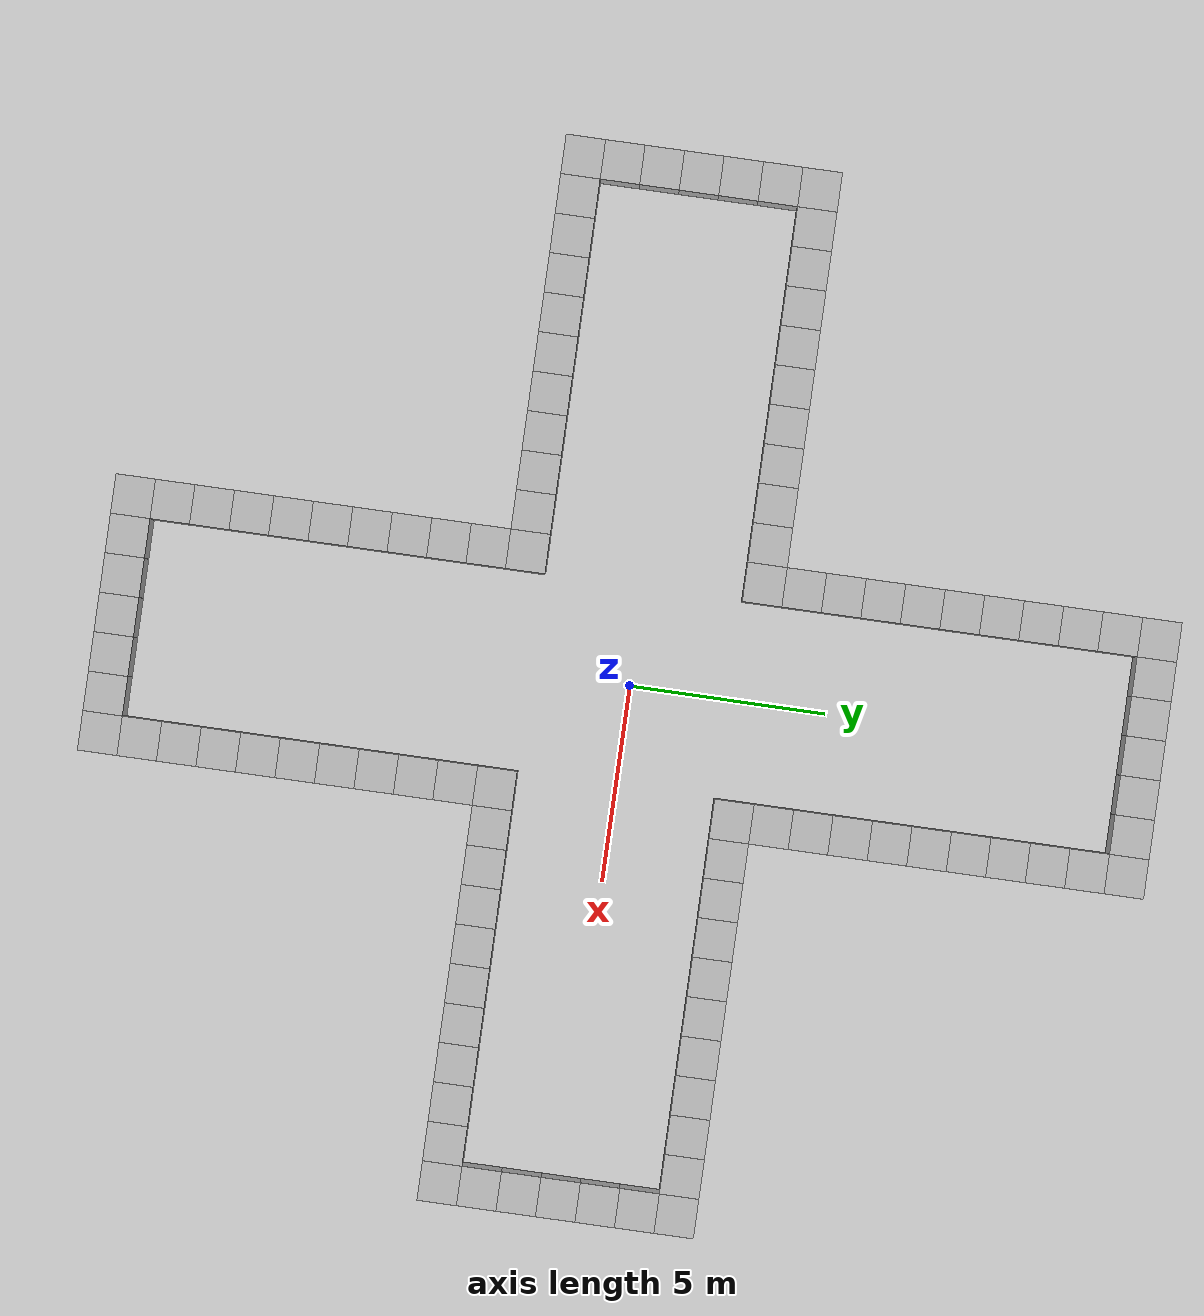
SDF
<sdf version="1.6">
 <world name="default">
  <include><uri>model://ground_plane</uri></include>
  <include><uri>model://sun</uri></include>
  <model name="cube_1">
   <static>true</static>
   <pose>3 3 0.5 0 0 0</pose>
   <link name="link">
    <inertial><mass>10000</mass></inertial>
    <collision name="collision"><geometry><box><size>1 1 1</size></box></geometry></collision>
    <visual name="visual"><geometry><box><size>1 1 1</size></box></geometry></visual>
   </link>
  </model>
  <model name="cube_2">
   <static>true</static>
   <pose>4 3 0.5 0 0 0</pose>
   <link name="link">
    <inertial><mass>10000</mass></inertial>
    <collision name="collision"><geometry><box><size>1 1 1</size></box></geometry></collision>
    <visual name="visual"><geometry><box><size>1 1 1</size></box></geometry></visual>
   </link>
  </model>
  <model name="cube_3">
   <static>true</static>
   <pose>5 3 0.5 0 0 0</pose>
   <link name="link">
    <inertial><mass>10000</mass></inertial>
    <collision name="collision"><geometry><box><size>1 1 1</size></box></geometry></collision>
    <visual name="visual"><geometry><box><size>1 1 1</size></box></geometry></visual>
   </link>
  </model>
  <model name="cube_4">
   <static>true</static>
   <pose>6 3 0.5 0 0 0</pose>
   <link name="link">
    <inertial><mass>10000</mass></inertial>
    <collision name="collision"><geometry><box><size>1 1 1</size></box></geometry></collision>
    <visual name="visual"><geometry><box><size>1 1 1</size></box></geometry></visual>
   </link>
  </model>
  <model name="cube_5">
   <static>true</static>
   <pose>7 3 0.5 0 0 0</pose>
   <link name="link">
    <inertial><mass>10000</mass></inertial>
    <collision name="collision"><geometry><box><size>1 1 1</size></box></geometry></collision>
    <visual name="visual"><geometry><box><size>1 1 1</size></box></geometry></visual>
   </link>
  </model>
  <model name="cube_6">
   <static>true</static>
   <pose>8 3 0.5 0 0 0</pose>
   <link name="link">
    <inertial><mass>10000</mass></inertial>
    <collision name="collision"><geometry><box><size>1 1 1</size></box></geometry></collision>
    <visual name="visual"><geometry><box><size>1 1 1</size></box></geometry></visual>
   </link>
  </model>
  <model name="cube_7">
   <static>true</static>
   <pose>9 3 0.5 0 0 0</pose>
   <link name="link">
    <inertial><mass>10000</mass></inertial>
    <collision name="collision"><geometry><box><size>1 1 1</size></box></geometry></collision>
    <visual name="visual"><geometry><box><size>1 1 1</size></box></geometry></visual>
   </link>
  </model>
  <model name="cube_8">
   <static>true</static>
   <pose>10 3 0.5 0 0 0</pose>
   <link name="link">
    <inertial><mass>10000</mass></inertial>
    <collision name="collision"><geometry><box><size>1 1 1</size></box></geometry></collision>
    <visual name="visual"><geometry><box><size>1 1 1</size></box></geometry></visual>
   </link>
  </model>
  <model name="cube_9">
   <static>true</static>
   <pose>11 3 0.5 0 0 0</pose>
   <link name="link">
    <inertial><mass>10000</mass></inertial>
    <collision name="collision"><geometry><box><size>1 1 1</size></box></geometry></collision>
    <visual name="visual"><geometry><box><size>1 1 1</size></box></geometry></visual>
   </link>
  </model>
  <model name="cube_10">
   <static>true</static>
   <pose>12 3 0.5 0 0 0</pose>
   <link name="link">
    <inertial><mass>10000</mass></inertial>
    <collision name="collision"><geometry><box><size>1 1 1</size></box></geometry></collision>
    <visual name="visual"><geometry><box><size>1 1 1</size></box></geometry></visual>
   </link>
  </model>
  <model name="cube_11">
   <static>true</static>
   <pose>13 3 0.5 0 0 0</pose>
   <link name="link">
    <inertial><mass>10000</mass></inertial>
    <collision name="collision"><geometry><box><size>1 1 1</size></box></geometry></collision>
    <visual name="visual"><geometry><box><size>1 1 1</size></box></geometry></visual>
   </link>
  </model>
  <model name="cube_12">
   <static>true</static>
   <pose>13 3 0.5 0 0 0</pose>
   <link name="link">
    <inertial><mass>10000</mass></inertial>
    <collision name="collision"><geometry><box><size>1 1 1</size></box></geometry></collision>
    <visual name="visual"><geometry><box><size>1 1 1</size></box></geometry></visual>
   </link>
  </model>
  <model name="cube_13">
   <static>true</static>
   <pose>13 2 0.5 0 0 0</pose>
   <link name="link">
    <inertial><mass>10000</mass></inertial>
    <collision name="collision"><geometry><box><size>1 1 1</size></box></geometry></collision>
    <visual name="visual"><geometry><box><size>1 1 1</size></box></geometry></visual>
   </link>
  </model>
  <model name="cube_14">
   <static>true</static>
   <pose>13 1 0.5 0 0 0</pose>
   <link name="link">
    <inertial><mass>10000</mass></inertial>
    <collision name="collision"><geometry><box><size>1 1 1</size></box></geometry></collision>
    <visual name="visual"><geometry><box><size>1 1 1</size></box></geometry></visual>
   </link>
  </model>
  <model name="cube_15">
   <static>true</static>
   <pose>13 0 0.5 0 0 0</pose>
   <link name="link">
    <inertial><mass>10000</mass></inertial>
    <collision name="collision"><geometry><box><size>1 1 1</size></box></geometry></collision>
    <visual name="visual"><geometry><box><size>1 1 1</size></box></geometry></visual>
   </link>
  </model>
  <model name="cube_16">
   <static>true</static>
   <pose>13 -1 0.5 0 0 0</pose>
   <link name="link">
    <inertial><mass>10000</mass></inertial>
    <collision name="collision"><geometry><box><size>1 1 1</size></box></geometry></collision>
    <visual name="visual"><geometry><box><size>1 1 1</size></box></geometry></visual>
   </link>
  </model>
  <model name="cube_17">
   <static>true</static>
   <pose>13 -2 0.5 0 0 0</pose>
   <link name="link">
    <inertial><mass>10000</mass></inertial>
    <collision name="collision"><geometry><box><size>1 1 1</size></box></geometry></collision>
    <visual name="visual"><geometry><box><size>1 1 1</size></box></geometry></visual>
   </link>
  </model>
  <model name="cube_18">
   <static>true</static>
   <pose>13 -3 0.5 0 0 0</pose>
   <link name="link">
    <inertial><mass>10000</mass></inertial>
    <collision name="collision"><geometry><box><size>1 1 1</size></box></geometry></collision>
    <visual name="visual"><geometry><box><size>1 1 1</size></box></geometry></visual>
   </link>
  </model>
  <model name="cube_19">
   <static>true</static>
   <pose>13 -3 0.5 0 0 0</pose>
   <link name="link">
    <inertial><mass>10000</mass></inertial>
    <collision name="collision"><geometry><box><size>1 1 1</size></box></geometry></collision>
    <visual name="visual"><geometry><box><size>1 1 1</size></box></geometry></visual>
   </link>
  </model>
  <model name="cube_20">
   <static>true</static>
   <pose>12 -3 0.5 0 0 0</pose>
   <link name="link">
    <inertial><mass>10000</mass></inertial>
    <collision name="collision"><geometry><box><size>1 1 1</size></box></geometry></collision>
    <visual name="visual"><geometry><box><size>1 1 1</size></box></geometry></visual>
   </link>
  </model>
  <model name="cube_21">
   <static>true</static>
   <pose>11 -3 0.5 0 0 0</pose>
   <link name="link">
    <inertial><mass>10000</mass></inertial>
    <collision name="collision"><geometry><box><size>1 1 1</size></box></geometry></collision>
    <visual name="visual"><geometry><box><size>1 1 1</size></box></geometry></visual>
   </link>
  </model>
  <model name="cube_22">
   <static>true</static>
   <pose>10 -3 0.5 0 0 0</pose>
   <link name="link">
    <inertial><mass>10000</mass></inertial>
    <collision name="collision"><geometry><box><size>1 1 1</size></box></geometry></collision>
    <visual name="visual"><geometry><box><size>1 1 1</size></box></geometry></visual>
   </link>
  </model>
  <model name="cube_23">
   <static>true</static>
   <pose>9 -3 0.5 0 0 0</pose>
   <link name="link">
    <inertial><mass>10000</mass></inertial>
    <collision name="collision"><geometry><box><size>1 1 1</size></box></geometry></collision>
    <visual name="visual"><geometry><box><size>1 1 1</size></box></geometry></visual>
   </link>
  </model>
  <model name="cube_24">
   <static>true</static>
   <pose>8 -3 0.5 0 0 0</pose>
   <link name="link">
    <inertial><mass>10000</mass></inertial>
    <collision name="collision"><geometry><box><size>1 1 1</size></box></geometry></collision>
    <visual name="visual"><geometry><box><size>1 1 1</size></box></geometry></visual>
   </link>
  </model>
  <model name="cube_25">
   <static>true</static>
   <pose>7 -3 0.5 0 0 0</pose>
   <link name="link">
    <inertial><mass>10000</mass></inertial>
    <collision name="collision"><geometry><box><size>1 1 1</size></box></geometry></collision>
    <visual name="visual"><geometry><box><size>1 1 1</size></box></geometry></visual>
   </link>
  </model>
  <model name="cube_26">
   <static>true</static>
   <pose>6 -3 0.5 0 0 0</pose>
   <link name="link">
    <inertial><mass>10000</mass></inertial>
    <collision name="collision"><geometry><box><size>1 1 1</size></box></geometry></collision>
    <visual name="visual"><geometry><box><size>1 1 1</size></box></geometry></visual>
   </link>
  </model>
  <model name="cube_27">
   <static>true</static>
   <pose>5 -3 0.5 0 0 0</pose>
   <link name="link">
    <inertial><mass>10000</mass></inertial>
    <collision name="collision"><geometry><box><size>1 1 1</size></box></geometry></collision>
    <visual name="visual"><geometry><box><size>1 1 1</size></box></geometry></visual>
   </link>
  </model>
  <model name="cube_28">
   <static>true</static>
   <pose>4 -3 0.5 0 0 0</pose>
   <link name="link">
    <inertial><mass>10000</mass></inertial>
    <collision name="collision"><geometry><box><size>1 1 1</size></box></geometry></collision>
    <visual name="visual"><geometry><box><size>1 1 1</size></box></geometry></visual>
   </link>
  </model>
  <model name="cube_29">
   <static>true</static>
   <pose>3 -3 0.5 0 0 0</pose>
   <link name="link">
    <inertial><mass>10000</mass></inertial>
    <collision name="collision"><geometry><box><size>1 1 1</size></box></geometry></collision>
    <visual name="visual"><geometry><box><size>1 1 1</size></box></geometry></visual>
   </link>
  </model>
  <model name="cube_30">
   <static>true</static>
   <pose>3 -3 0.5 0 0 0</pose>
   <link name="link">
    <inertial><mass>10000</mass></inertial>
    <collision name="collision"><geometry><box><size>1 1 1</size></box></geometry></collision>
    <visual name="visual"><geometry><box><size>1 1 1</size></box></geometry></visual>
   </link>
  </model>
  <model name="cube_31">
   <static>true</static>
   <pose>3 -4 0.5 0 0 0</pose>
   <link name="link">
    <inertial><mass>10000</mass></inertial>
    <collision name="collision"><geometry><box><size>1 1 1</size></box></geometry></collision>
    <visual name="visual"><geometry><box><size>1 1 1</size></box></geometry></visual>
   </link>
  </model>
  <model name="cube_32">
   <static>true</static>
   <pose>3 -5 0.5 0 0 0</pose>
   <link name="link">
    <inertial><mass>10000</mass></inertial>
    <collision name="collision"><geometry><box><size>1 1 1</size></box></geometry></collision>
    <visual name="visual"><geometry><box><size>1 1 1</size></box></geometry></visual>
   </link>
  </model>
  <model name="cube_33">
   <static>true</static>
   <pose>3 -6 0.5 0 0 0</pose>
   <link name="link">
    <inertial><mass>10000</mass></inertial>
    <collision name="collision"><geometry><box><size>1 1 1</size></box></geometry></collision>
    <visual name="visual"><geometry><box><size>1 1 1</size></box></geometry></visual>
   </link>
  </model>
  <model name="cube_34">
   <static>true</static>
   <pose>3 -7 0.5 0 0 0</pose>
   <link name="link">
    <inertial><mass>10000</mass></inertial>
    <collision name="collision"><geometry><box><size>1 1 1</size></box></geometry></collision>
    <visual name="visual"><geometry><box><size>1 1 1</size></box></geometry></visual>
   </link>
  </model>
  <model name="cube_35">
   <static>true</static>
   <pose>3 -8 0.5 0 0 0</pose>
   <link name="link">
    <inertial><mass>10000</mass></inertial>
    <collision name="collision"><geometry><box><size>1 1 1</size></box></geometry></collision>
    <visual name="visual"><geometry><box><size>1 1 1</size></box></geometry></visual>
   </link>
  </model>
  <model name="cube_36">
   <static>true</static>
   <pose>3 -9 0.5 0 0 0</pose>
   <link name="link">
    <inertial><mass>10000</mass></inertial>
    <collision name="collision"><geometry><box><size>1 1 1</size></box></geometry></collision>
    <visual name="visual"><geometry><box><size>1 1 1</size></box></geometry></visual>
   </link>
  </model>
  <model name="cube_37">
   <static>true</static>
   <pose>3 -10 0.5 0 0 0</pose>
   <link name="link">
    <inertial><mass>10000</mass></inertial>
    <collision name="collision"><geometry><box><size>1 1 1</size></box></geometry></collision>
    <visual name="visual"><geometry><box><size>1 1 1</size></box></geometry></visual>
   </link>
  </model>
  <model name="cube_38">
   <static>true</static>
   <pose>3 -11 0.5 0 0 0</pose>
   <link name="link">
    <inertial><mass>10000</mass></inertial>
    <collision name="collision"><geometry><box><size>1 1 1</size></box></geometry></collision>
    <visual name="visual"><geometry><box><size>1 1 1</size></box></geometry></visual>
   </link>
  </model>
  <model name="cube_39">
   <static>true</static>
   <pose>3 -12 0.5 0 0 0</pose>
   <link name="link">
    <inertial><mass>10000</mass></inertial>
    <collision name="collision"><geometry><box><size>1 1 1</size></box></geometry></collision>
    <visual name="visual"><geometry><box><size>1 1 1</size></box></geometry></visual>
   </link>
  </model>
  <model name="cube_40">
   <static>true</static>
   <pose>3 -13 0.5 0 0 0</pose>
   <link name="link">
    <inertial><mass>10000</mass></inertial>
    <collision name="collision"><geometry><box><size>1 1 1</size></box></geometry></collision>
    <visual name="visual"><geometry><box><size>1 1 1</size></box></geometry></visual>
   </link>
  </model>
  <model name="cube_41">
   <static>true</static>
   <pose>3 -13 0.5 0 0 0</pose>
   <link name="link">
    <inertial><mass>10000</mass></inertial>
    <collision name="collision"><geometry><box><size>1 1 1</size></box></geometry></collision>
    <visual name="visual"><geometry><box><size>1 1 1</size></box></geometry></visual>
   </link>
  </model>
  <model name="cube_42">
   <static>true</static>
   <pose>2 -13 0.5 0 0 0</pose>
   <link name="link">
    <inertial><mass>10000</mass></inertial>
    <collision name="collision"><geometry><box><size>1 1 1</size></box></geometry></collision>
    <visual name="visual"><geometry><box><size>1 1 1</size></box></geometry></visual>
   </link>
  </model>
  <model name="cube_43">
   <static>true</static>
   <pose>1 -13 0.5 0 0 0</pose>
   <link name="link">
    <inertial><mass>10000</mass></inertial>
    <collision name="collision"><geometry><box><size>1 1 1</size></box></geometry></collision>
    <visual name="visual"><geometry><box><size>1 1 1</size></box></geometry></visual>
   </link>
  </model>
  <model name="cube_44">
   <static>true</static>
   <pose>0 -13 0.5 0 0 0</pose>
   <link name="link">
    <inertial><mass>10000</mass></inertial>
    <collision name="collision"><geometry><box><size>1 1 1</size></box></geometry></collision>
    <visual name="visual"><geometry><box><size>1 1 1</size></box></geometry></visual>
   </link>
  </model>
  <model name="cube_45">
   <static>true</static>
   <pose>-1 -13 0.5 0 0 0</pose>
   <link name="link">
    <inertial><mass>10000</mass></inertial>
    <collision name="collision"><geometry><box><size>1 1 1</size></box></geometry></collision>
    <visual name="visual"><geometry><box><size>1 1 1</size></box></geometry></visual>
   </link>
  </model>
  <model name="cube_46">
   <static>true</static>
   <pose>-2 -13 0.5 0 0 0</pose>
   <link name="link">
    <inertial><mass>10000</mass></inertial>
    <collision name="collision"><geometry><box><size>1 1 1</size></box></geometry></collision>
    <visual name="visual"><geometry><box><size>1 1 1</size></box></geometry></visual>
   </link>
  </model>
  <model name="cube_47">
   <static>true</static>
   <pose>-3 -13 0.5 0 0 0</pose>
   <link name="link">
    <inertial><mass>10000</mass></inertial>
    <collision name="collision"><geometry><box><size>1 1 1</size></box></geometry></collision>
    <visual name="visual"><geometry><box><size>1 1 1</size></box></geometry></visual>
   </link>
  </model>
  <model name="cube_48">
   <static>true</static>
   <pose>-3 -13 0.5 0 0 0</pose>
   <link name="link">
    <inertial><mass>10000</mass></inertial>
    <collision name="collision"><geometry><box><size>1 1 1</size></box></geometry></collision>
    <visual name="visual"><geometry><box><size>1 1 1</size></box></geometry></visual>
   </link>
  </model>
  <model name="cube_49">
   <static>true</static>
   <pose>-3 -12 0.5 0 0 0</pose>
   <link name="link">
    <inertial><mass>10000</mass></inertial>
    <collision name="collision"><geometry><box><size>1 1 1</size></box></geometry></collision>
    <visual name="visual"><geometry><box><size>1 1 1</size></box></geometry></visual>
   </link>
  </model>
  <model name="cube_50">
   <static>true</static>
   <pose>-3 -11 0.5 0 0 0</pose>
   <link name="link">
    <inertial><mass>10000</mass></inertial>
    <collision name="collision"><geometry><box><size>1 1 1</size></box></geometry></collision>
    <visual name="visual"><geometry><box><size>1 1 1</size></box></geometry></visual>
   </link>
  </model>
  <model name="cube_51">
   <static>true</static>
   <pose>-3 -10 0.5 0 0 0</pose>
   <link name="link">
    <inertial><mass>10000</mass></inertial>
    <collision name="collision"><geometry><box><size>1 1 1</size></box></geometry></collision>
    <visual name="visual"><geometry><box><size>1 1 1</size></box></geometry></visual>
   </link>
  </model>
  <model name="cube_52">
   <static>true</static>
   <pose>-3 -9 0.5 0 0 0</pose>
   <link name="link">
    <inertial><mass>10000</mass></inertial>
    <collision name="collision"><geometry><box><size>1 1 1</size></box></geometry></collision>
    <visual name="visual"><geometry><box><size>1 1 1</size></box></geometry></visual>
   </link>
  </model>
  <model name="cube_53">
   <static>true</static>
   <pose>-3 -8 0.5 0 0 0</pose>
   <link name="link">
    <inertial><mass>10000</mass></inertial>
    <collision name="collision"><geometry><box><size>1 1 1</size></box></geometry></collision>
    <visual name="visual"><geometry><box><size>1 1 1</size></box></geometry></visual>
   </link>
  </model>
  <model name="cube_54">
   <static>true</static>
   <pose>-3 -7 0.5 0 0 0</pose>
   <link name="link">
    <inertial><mass>10000</mass></inertial>
    <collision name="collision"><geometry><box><size>1 1 1</size></box></geometry></collision>
    <visual name="visual"><geometry><box><size>1 1 1</size></box></geometry></visual>
   </link>
  </model>
  <model name="cube_55">
   <static>true</static>
   <pose>-3 -6 0.5 0 0 0</pose>
   <link name="link">
    <inertial><mass>10000</mass></inertial>
    <collision name="collision"><geometry><box><size>1 1 1</size></box></geometry></collision>
    <visual name="visual"><geometry><box><size>1 1 1</size></box></geometry></visual>
   </link>
  </model>
  <model name="cube_56">
   <static>true</static>
   <pose>-3 -5 0.5 0 0 0</pose>
   <link name="link">
    <inertial><mass>10000</mass></inertial>
    <collision name="collision"><geometry><box><size>1 1 1</size></box></geometry></collision>
    <visual name="visual"><geometry><box><size>1 1 1</size></box></geometry></visual>
   </link>
  </model>
  <model name="cube_57">
   <static>true</static>
   <pose>-3 -4 0.5 0 0 0</pose>
   <link name="link">
    <inertial><mass>10000</mass></inertial>
    <collision name="collision"><geometry><box><size>1 1 1</size></box></geometry></collision>
    <visual name="visual"><geometry><box><size>1 1 1</size></box></geometry></visual>
   </link>
  </model>
  <model name="cube_58">
   <static>true</static>
   <pose>-3 -3 0.5 0 0 0</pose>
   <link name="link">
    <inertial><mass>10000</mass></inertial>
    <collision name="collision"><geometry><box><size>1 1 1</size></box></geometry></collision>
    <visual name="visual"><geometry><box><size>1 1 1</size></box></geometry></visual>
   </link>
  </model>
  <model name="cube_59">
   <static>true</static>
   <pose>-3 -3 0.5 0 0 0</pose>
   <link name="link">
    <inertial><mass>10000</mass></inertial>
    <collision name="collision"><geometry><box><size>1 1 1</size></box></geometry></collision>
    <visual name="visual"><geometry><box><size>1 1 1</size></box></geometry></visual>
   </link>
  </model>
  <model name="cube_60">
   <static>true</static>
   <pose>-4 -3 0.5 0 0 0</pose>
   <link name="link">
    <inertial><mass>10000</mass></inertial>
    <collision name="collision"><geometry><box><size>1 1 1</size></box></geometry></collision>
    <visual name="visual"><geometry><box><size>1 1 1</size></box></geometry></visual>
   </link>
  </model>
  <model name="cube_61">
   <static>true</static>
   <pose>-5 -3 0.5 0 0 0</pose>
   <link name="link">
    <inertial><mass>10000</mass></inertial>
    <collision name="collision"><geometry><box><size>1 1 1</size></box></geometry></collision>
    <visual name="visual"><geometry><box><size>1 1 1</size></box></geometry></visual>
   </link>
  </model>
  <model name="cube_62">
   <static>true</static>
   <pose>-6 -3 0.5 0 0 0</pose>
   <link name="link">
    <inertial><mass>10000</mass></inertial>
    <collision name="collision"><geometry><box><size>1 1 1</size></box></geometry></collision>
    <visual name="visual"><geometry><box><size>1 1 1</size></box></geometry></visual>
   </link>
  </model>
  <model name="cube_63">
   <static>true</static>
   <pose>-7 -3 0.5 0 0 0</pose>
   <link name="link">
    <inertial><mass>10000</mass></inertial>
    <collision name="collision"><geometry><box><size>1 1 1</size></box></geometry></collision>
    <visual name="visual"><geometry><box><size>1 1 1</size></box></geometry></visual>
   </link>
  </model>
  <model name="cube_64">
   <static>true</static>
   <pose>-8 -3 0.5 0 0 0</pose>
   <link name="link">
    <inertial><mass>10000</mass></inertial>
    <collision name="collision"><geometry><box><size>1 1 1</size></box></geometry></collision>
    <visual name="visual"><geometry><box><size>1 1 1</size></box></geometry></visual>
   </link>
  </model>
  <model name="cube_65">
   <static>true</static>
   <pose>-9 -3 0.5 0 0 0</pose>
   <link name="link">
    <inertial><mass>10000</mass></inertial>
    <collision name="collision"><geometry><box><size>1 1 1</size></box></geometry></collision>
    <visual name="visual"><geometry><box><size>1 1 1</size></box></geometry></visual>
   </link>
  </model>
  <model name="cube_66">
   <static>true</static>
   <pose>-10 -3 0.5 0 0 0</pose>
   <link name="link">
    <inertial><mass>10000</mass></inertial>
    <collision name="collision"><geometry><box><size>1 1 1</size></box></geometry></collision>
    <visual name="visual"><geometry><box><size>1 1 1</size></box></geometry></visual>
   </link>
  </model>
  <model name="cube_67">
   <static>true</static>
   <pose>-11 -3 0.5 0 0 0</pose>
   <link name="link">
    <inertial><mass>10000</mass></inertial>
    <collision name="collision"><geometry><box><size>1 1 1</size></box></geometry></collision>
    <visual name="visual"><geometry><box><size>1 1 1</size></box></geometry></visual>
   </link>
  </model>
  <model name="cube_68">
   <static>true</static>
   <pose>-12 -3 0.5 0 0 0</pose>
   <link name="link">
    <inertial><mass>10000</mass></inertial>
    <collision name="collision"><geometry><box><size>1 1 1</size></box></geometry></collision>
    <visual name="visual"><geometry><box><size>1 1 1</size></box></geometry></visual>
   </link>
  </model>
  <model name="cube_69">
   <static>true</static>
   <pose>-13 -3 0.5 0 0 0</pose>
   <link name="link">
    <inertial><mass>10000</mass></inertial>
    <collision name="collision"><geometry><box><size>1 1 1</size></box></geometry></collision>
    <visual name="visual"><geometry><box><size>1 1 1</size></box></geometry></visual>
   </link>
  </model>
  <model name="cube_70">
   <static>true</static>
   <pose>-13 -3 0.5 0 0 0</pose>
   <link name="link">
    <inertial><mass>10000</mass></inertial>
    <collision name="collision"><geometry><box><size>1 1 1</size></box></geometry></collision>
    <visual name="visual"><geometry><box><size>1 1 1</size></box></geometry></visual>
   </link>
  </model>
  <model name="cube_71">
   <static>true</static>
   <pose>-13 -2 0.5 0 0 0</pose>
   <link name="link">
    <inertial><mass>10000</mass></inertial>
    <collision name="collision"><geometry><box><size>1 1 1</size></box></geometry></collision>
    <visual name="visual"><geometry><box><size>1 1 1</size></box></geometry></visual>
   </link>
  </model>
  <model name="cube_72">
   <static>true</static>
   <pose>-13 -1 0.5 0 0 0</pose>
   <link name="link">
    <inertial><mass>10000</mass></inertial>
    <collision name="collision"><geometry><box><size>1 1 1</size></box></geometry></collision>
    <visual name="visual"><geometry><box><size>1 1 1</size></box></geometry></visual>
   </link>
  </model>
  <model name="cube_73">
   <static>true</static>
   <pose>-13 0 0.5 0 0 0</pose>
   <link name="link">
    <inertial><mass>10000</mass></inertial>
    <collision name="collision"><geometry><box><size>1 1 1</size></box></geometry></collision>
    <visual name="visual"><geometry><box><size>1 1 1</size></box></geometry></visual>
   </link>
  </model>
  <model name="cube_74">
   <static>true</static>
   <pose>-13 1 0.5 0 0 0</pose>
   <link name="link">
    <inertial><mass>10000</mass></inertial>
    <collision name="collision"><geometry><box><size>1 1 1</size></box></geometry></collision>
    <visual name="visual"><geometry><box><size>1 1 1</size></box></geometry></visual>
   </link>
  </model>
  <model name="cube_75">
   <static>true</static>
   <pose>-13 2 0.5 0 0 0</pose>
   <link name="link">
    <inertial><mass>10000</mass></inertial>
    <collision name="collision"><geometry><box><size>1 1 1</size></box></geometry></collision>
    <visual name="visual"><geometry><box><size>1 1 1</size></box></geometry></visual>
   </link>
  </model>
  <model name="cube_76">
   <static>true</static>
   <pose>-13 3 0.5 0 0 0</pose>
   <link name="link">
    <inertial><mass>10000</mass></inertial>
    <collision name="collision"><geometry><box><size>1 1 1</size></box></geometry></collision>
    <visual name="visual"><geometry><box><size>1 1 1</size></box></geometry></visual>
   </link>
  </model>
  <model name="cube_77">
   <static>true</static>
   <pose>-13 3 0.5 0 0 0</pose>
   <link name="link">
    <inertial><mass>10000</mass></inertial>
    <collision name="collision"><geometry><box><size>1 1 1</size></box></geometry></collision>
    <visual name="visual"><geometry><box><size>1 1 1</size></box></geometry></visual>
   </link>
  </model>
  <model name="cube_78">
   <static>true</static>
   <pose>-12 3 0.5 0 0 0</pose>
   <link name="link">
    <inertial><mass>10000</mass></inertial>
    <collision name="collision"><geometry><box><size>1 1 1</size></box></geometry></collision>
    <visual name="visual"><geometry><box><size>1 1 1</size></box></geometry></visual>
   </link>
  </model>
  <model name="cube_79">
   <static>true</static>
   <pose>-11 3 0.5 0 0 0</pose>
   <link name="link">
    <inertial><mass>10000</mass></inertial>
    <collision name="collision"><geometry><box><size>1 1 1</size></box></geometry></collision>
    <visual name="visual"><geometry><box><size>1 1 1</size></box></geometry></visual>
   </link>
  </model>
  <model name="cube_80">
   <static>true</static>
   <pose>-10 3 0.5 0 0 0</pose>
   <link name="link">
    <inertial><mass>10000</mass></inertial>
    <collision name="collision"><geometry><box><size>1 1 1</size></box></geometry></collision>
    <visual name="visual"><geometry><box><size>1 1 1</size></box></geometry></visual>
   </link>
  </model>
  <model name="cube_81">
   <static>true</static>
   <pose>-9 3 0.5 0 0 0</pose>
   <link name="link">
    <inertial><mass>10000</mass></inertial>
    <collision name="collision"><geometry><box><size>1 1 1</size></box></geometry></collision>
    <visual name="visual"><geometry><box><size>1 1 1</size></box></geometry></visual>
   </link>
  </model>
  <model name="cube_82">
   <static>true</static>
   <pose>-8 3 0.5 0 0 0</pose>
   <link name="link">
    <inertial><mass>10000</mass></inertial>
    <collision name="collision"><geometry><box><size>1 1 1</size></box></geometry></collision>
    <visual name="visual"><geometry><box><size>1 1 1</size></box></geometry></visual>
   </link>
  </model>
  <model name="cube_83">
   <static>true</static>
   <pose>-7 3 0.5 0 0 0</pose>
   <link name="link">
    <inertial><mass>10000</mass></inertial>
    <collision name="collision"><geometry><box><size>1 1 1</size></box></geometry></collision>
    <visual name="visual"><geometry><box><size>1 1 1</size></box></geometry></visual>
   </link>
  </model>
  <model name="cube_84">
   <static>true</static>
   <pose>-6 3 0.5 0 0 0</pose>
   <link name="link">
    <inertial><mass>10000</mass></inertial>
    <collision name="collision"><geometry><box><size>1 1 1</size></box></geometry></collision>
    <visual name="visual"><geometry><box><size>1 1 1</size></box></geometry></visual>
   </link>
  </model>
  <model name="cube_85">
   <static>true</static>
   <pose>-5 3 0.5 0 0 0</pose>
   <link name="link">
    <inertial><mass>10000</mass></inertial>
    <collision name="collision"><geometry><box><size>1 1 1</size></box></geometry></collision>
    <visual name="visual"><geometry><box><size>1 1 1</size></box></geometry></visual>
   </link>
  </model>
  <model name="cube_86">
   <static>true</static>
   <pose>-4 3 0.5 0 0 0</pose>
   <link name="link">
    <inertial><mass>10000</mass></inertial>
    <collision name="collision"><geometry><box><size>1 1 1</size></box></geometry></collision>
    <visual name="visual"><geometry><box><size>1 1 1</size></box></geometry></visual>
   </link>
  </model>
  <model name="cube_87">
   <static>true</static>
   <pose>-3 3 0.5 0 0 0</pose>
   <link name="link">
    <inertial><mass>10000</mass></inertial>
    <collision name="collision"><geometry><box><size>1 1 1</size></box></geometry></collision>
    <visual name="visual"><geometry><box><size>1 1 1</size></box></geometry></visual>
   </link>
  </model>
  <model name="cube_88">
   <static>true</static>
   <pose>-3 3 0.5 0 0 0</pose>
   <link name="link">
    <inertial><mass>10000</mass></inertial>
    <collision name="collision"><geometry><box><size>1 1 1</size></box></geometry></collision>
    <visual name="visual"><geometry><box><size>1 1 1</size></box></geometry></visual>
   </link>
  </model>
  <model name="cube_89">
   <static>true</static>
   <pose>-3 4 0.5 0 0 0</pose>
   <link name="link">
    <inertial><mass>10000</mass></inertial>
    <collision name="collision"><geometry><box><size>1 1 1</size></box></geometry></collision>
    <visual name="visual"><geometry><box><size>1 1 1</size></box></geometry></visual>
   </link>
  </model>
  <model name="cube_90">
   <static>true</static>
   <pose>-3 5 0.5 0 0 0</pose>
   <link name="link">
    <inertial><mass>10000</mass></inertial>
    <collision name="collision"><geometry><box><size>1 1 1</size></box></geometry></collision>
    <visual name="visual"><geometry><box><size>1 1 1</size></box></geometry></visual>
   </link>
  </model>
  <model name="cube_91">
   <static>true</static>
   <pose>-3 6 0.5 0 0 0</pose>
   <link name="link">
    <inertial><mass>10000</mass></inertial>
    <collision name="collision"><geometry><box><size>1 1 1</size></box></geometry></collision>
    <visual name="visual"><geometry><box><size>1 1 1</size></box></geometry></visual>
   </link>
  </model>
  <model name="cube_92">
   <static>true</static>
   <pose>-3 7 0.5 0 0 0</pose>
   <link name="link">
    <inertial><mass>10000</mass></inertial>
    <collision name="collision"><geometry><box><size>1 1 1</size></box></geometry></collision>
    <visual name="visual"><geometry><box><size>1 1 1</size></box></geometry></visual>
   </link>
  </model>
  <model name="cube_93">
   <static>true</static>
   <pose>-3 8 0.5 0 0 0</pose>
   <link name="link">
    <inertial><mass>10000</mass></inertial>
    <collision name="collision"><geometry><box><size>1 1 1</size></box></geometry></collision>
    <visual name="visual"><geometry><box><size>1 1 1</size></box></geometry></visual>
   </link>
  </model>
  <model name="cube_94">
   <static>true</static>
   <pose>-3 9 0.5 0 0 0</pose>
   <link name="link">
    <inertial><mass>10000</mass></inertial>
    <collision name="collision"><geometry><box><size>1 1 1</size></box></geometry></collision>
    <visual name="visual"><geometry><box><size>1 1 1</size></box></geometry></visual>
   </link>
  </model>
  <model name="cube_95">
   <static>true</static>
   <pose>-3 10 0.5 0 0 0</pose>
   <link name="link">
    <inertial><mass>10000</mass></inertial>
    <collision name="collision"><geometry><box><size>1 1 1</size></box></geometry></collision>
    <visual name="visual"><geometry><box><size>1 1 1</size></box></geometry></visual>
   </link>
  </model>
  <model name="cube_96">
   <static>true</static>
   <pose>-3 11 0.5 0 0 0</pose>
   <link name="link">
    <inertial><mass>10000</mass></inertial>
    <collision name="collision"><geometry><box><size>1 1 1</size></box></geometry></collision>
    <visual name="visual"><geometry><box><size>1 1 1</size></box></geometry></visual>
   </link>
  </model>
  <model name="cube_97">
   <static>true</static>
   <pose>-3 12 0.5 0 0 0</pose>
   <link name="link">
    <inertial><mass>10000</mass></inertial>
    <collision name="collision"><geometry><box><size>1 1 1</size></box></geometry></collision>
    <visual name="visual"><geometry><box><size>1 1 1</size></box></geometry></visual>
   </link>
  </model>
  <model name="cube_98">
   <static>true</static>
   <pose>-3 13 0.5 0 0 0</pose>
   <link name="link">
    <inertial><mass>10000</mass></inertial>
    <collision name="collision"><geometry><box><size>1 1 1</size></box></geometry></collision>
    <visual name="visual"><geometry><box><size>1 1 1</size></box></geometry></visual>
   </link>
  </model>
  <model name="cube_99">
   <static>true</static>
   <pose>-3 13 0.5 0 0 0</pose>
   <link name="link">
    <inertial><mass>10000</mass></inertial>
    <collision name="collision"><geometry><box><size>1 1 1</size></box></geometry></collision>
    <visual name="visual"><geometry><box><size>1 1 1</size></box></geometry></visual>
   </link>
  </model>
  <model name="cube_100">
   <static>true</static>
   <pose>-2 13 0.5 0 0 0</pose>
   <link name="link">
    <inertial><mass>10000</mass></inertial>
    <collision name="collision"><geometry><box><size>1 1 1</size></box></geometry></collision>
    <visual name="visual"><geometry><box><size>1 1 1</size></box></geometry></visual>
   </link>
  </model>
  <model name="cube_101">
   <static>true</static>
   <pose>-1 13 0.5 0 0 0</pose>
   <link name="link">
    <inertial><mass>10000</mass></inertial>
    <collision name="collision"><geometry><box><size>1 1 1</size></box></geometry></collision>
    <visual name="visual"><geometry><box><size>1 1 1</size></box></geometry></visual>
   </link>
  </model>
  <model name="cube_102">
   <static>true</static>
   <pose>0 13 0.5 0 0 0</pose>
   <link name="link">
    <inertial><mass>10000</mass></inertial>
    <collision name="collision"><geometry><box><size>1 1 1</size></box></geometry></collision>
    <visual name="visual"><geometry><box><size>1 1 1</size></box></geometry></visual>
   </link>
  </model>
  <model name="cube_103">
   <static>true</static>
   <pose>1 13 0.5 0 0 0</pose>
   <link name="link">
    <inertial><mass>10000</mass></inertial>
    <collision name="collision"><geometry><box><size>1 1 1</size></box></geometry></collision>
    <visual name="visual"><geometry><box><size>1 1 1</size></box></geometry></visual>
   </link>
  </model>
  <model name="cube_104">
   <static>true</static>
   <pose>2 13 0.5 0 0 0</pose>
   <link name="link">
    <inertial><mass>10000</mass></inertial>
    <collision name="collision"><geometry><box><size>1 1 1</size></box></geometry></collision>
    <visual name="visual"><geometry><box><size>1 1 1</size></box></geometry></visual>
   </link>
  </model>
  <model name="cube_105">
   <static>true</static>
   <pose>3 13 0.5 0 0 0</pose>
   <link name="link">
    <inertial><mass>10000</mass></inertial>
    <collision name="collision"><geometry><box><size>1 1 1</size></box></geometry></collision>
    <visual name="visual"><geometry><box><size>1 1 1</size></box></geometry></visual>
   </link>
  </model>
  <model name="cube_106">
   <static>true</static>
   <pose>3 13 0.5 0 0 0</pose>
   <link name="link">
    <inertial><mass>10000</mass></inertial>
    <collision name="collision"><geometry><box><size>1 1 1</size></box></geometry></collision>
    <visual name="visual"><geometry><box><size>1 1 1</size></box></geometry></visual>
   </link>
  </model>
  <model name="cube_107">
   <static>true</static>
   <pose>3 12 0.5 0 0 0</pose>
   <link name="link">
    <inertial><mass>10000</mass></inertial>
    <collision name="collision"><geometry><box><size>1 1 1</size></box></geometry></collision>
    <visual name="visual"><geometry><box><size>1 1 1</size></box></geometry></visual>
   </link>
  </model>
  <model name="cube_108">
   <static>true</static>
   <pose>3 11 0.5 0 0 0</pose>
   <link name="link">
    <inertial><mass>10000</mass></inertial>
    <collision name="collision"><geometry><box><size>1 1 1</size></box></geometry></collision>
    <visual name="visual"><geometry><box><size>1 1 1</size></box></geometry></visual>
   </link>
  </model>
  <model name="cube_109">
   <static>true</static>
   <pose>3 10 0.5 0 0 0</pose>
   <link name="link">
    <inertial><mass>10000</mass></inertial>
    <collision name="collision"><geometry><box><size>1 1 1</size></box></geometry></collision>
    <visual name="visual"><geometry><box><size>1 1 1</size></box></geometry></visual>
   </link>
  </model>
  <model name="cube_110">
   <static>true</static>
   <pose>3 9 0.5 0 0 0</pose>
   <link name="link">
    <inertial><mass>10000</mass></inertial>
    <collision name="collision"><geometry><box><size>1 1 1</size></box></geometry></collision>
    <visual name="visual"><geometry><box><size>1 1 1</size></box></geometry></visual>
   </link>
  </model>
  <model name="cube_111">
   <static>true</static>
   <pose>3 8 0.5 0 0 0</pose>
   <link name="link">
    <inertial><mass>10000</mass></inertial>
    <collision name="collision"><geometry><box><size>1 1 1</size></box></geometry></collision>
    <visual name="visual"><geometry><box><size>1 1 1</size></box></geometry></visual>
   </link>
  </model>
  <model name="cube_112">
   <static>true</static>
   <pose>3 7 0.5 0 0 0</pose>
   <link name="link">
    <inertial><mass>10000</mass></inertial>
    <collision name="collision"><geometry><box><size>1 1 1</size></box></geometry></collision>
    <visual name="visual"><geometry><box><size>1 1 1</size></box></geometry></visual>
   </link>
  </model>
  <model name="cube_113">
   <static>true</static>
   <pose>3 6 0.5 0 0 0</pose>
   <link name="link">
    <inertial><mass>10000</mass></inertial>
    <collision name="collision"><geometry><box><size>1 1 1</size></box></geometry></collision>
    <visual name="visual"><geometry><box><size>1 1 1</size></box></geometry></visual>
   </link>
  </model>
  <model name="cube_114">
   <static>true</static>
   <pose>3 5 0.5 0 0 0</pose>
   <link name="link">
    <inertial><mass>10000</mass></inertial>
    <collision name="collision"><geometry><box><size>1 1 1</size></box></geometry></collision>
    <visual name="visual"><geometry><box><size>1 1 1</size></box></geometry></visual>
   </link>
  </model>
  <model name="cube_115">
   <static>true</static>
   <pose>3 4 0.5 0 0 0</pose>
   <link name="link">
    <inertial><mass>10000</mass></inertial>
    <collision name="collision"><geometry><box><size>1 1 1</size></box></geometry></collision>
    <visual name="visual"><geometry><box><size>1 1 1</size></box></geometry></visual>
   </link>
  </model>
  <model name="cube_116">
   <static>true</static>
   <pose>3 3 0.5 0 0 0</pose>
   <link name="link">
    <inertial><mass>10000</mass></inertial>
    <collision name="collision"><geometry><box><size>1 1 1</size></box></geometry></collision>
    <visual name="visual"><geometry><box><size>1 1 1</size></box></geometry></visual>
   </link>
  </model>
  <physics type="ode">
   <max_step_size>0.001</max_step_size>
   <real_time_update_rate>5000</real_time_update_rate>
  </physics>
 </world>
</sdf>
